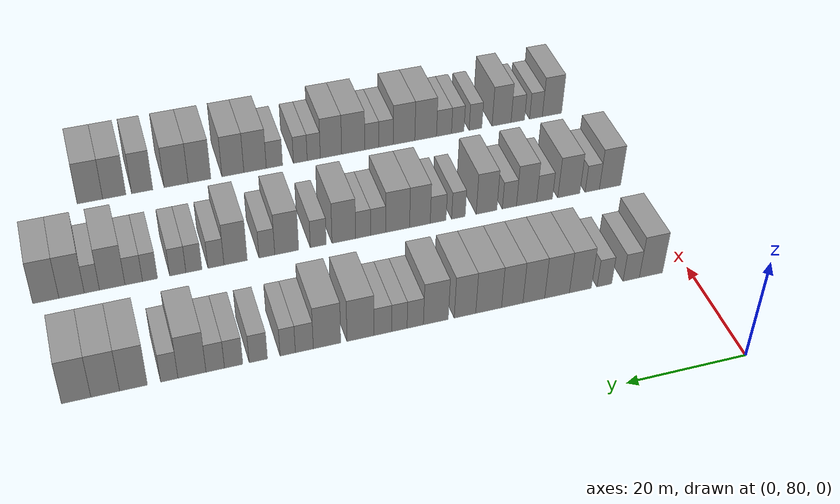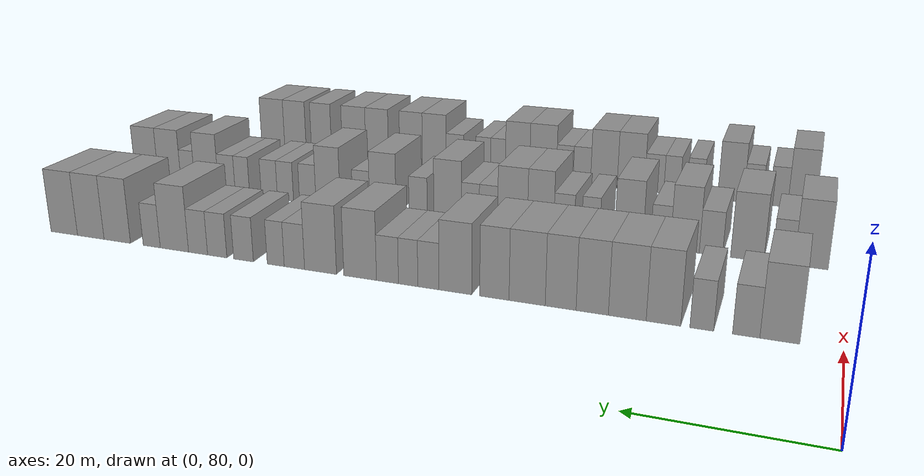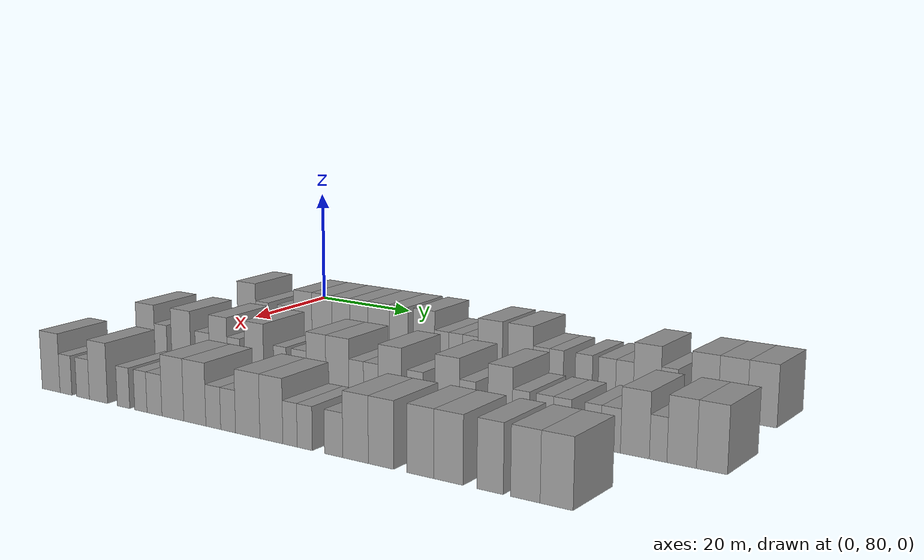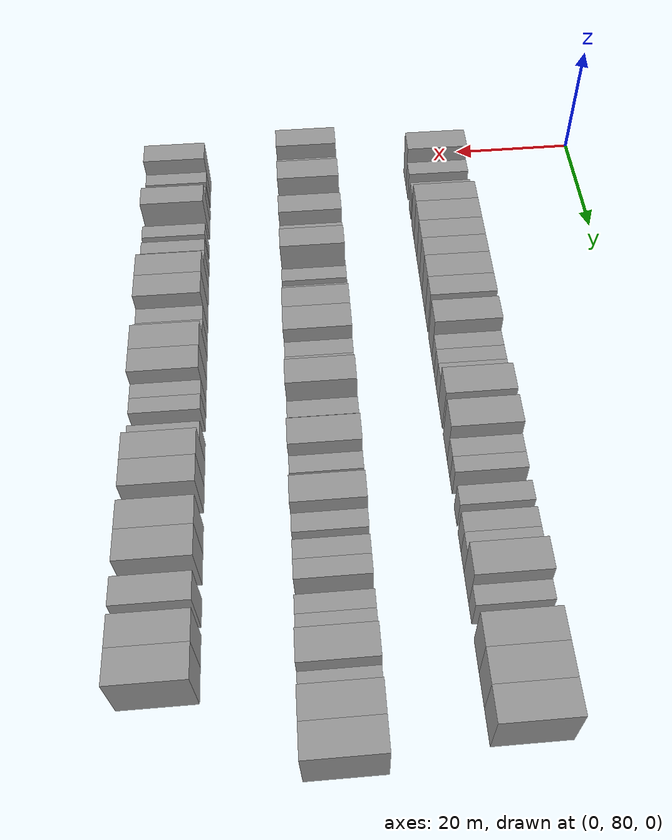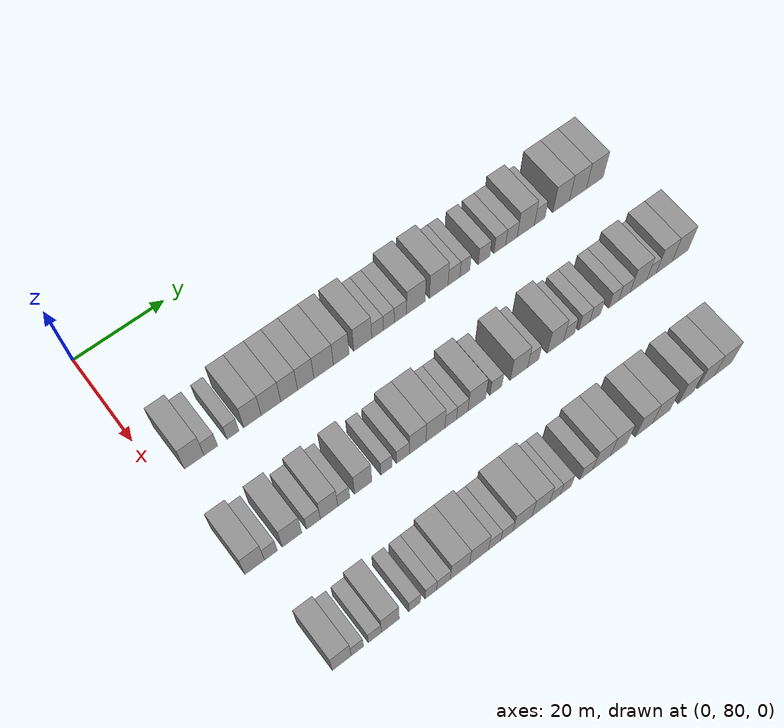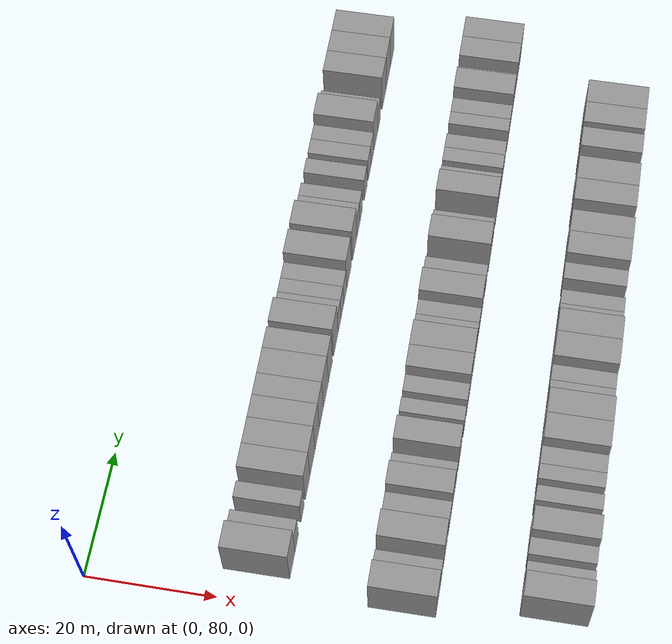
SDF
<sdf version="1.6">
 <world name="default">
  <model name="building_116">
   <static>1</static>
   <pose>25.0000 86.5409 0 0.000000 0.000000 0.000000</pose>
   <link name="link">
    <pose>0 0 4.50 0 0 0</pose>
    <collision name="collision"><geometry><box><size>10.0000 4.1463 9.0000</size></box></geometry></collision>
    <visual name="visual">
     <cast_shadows>0</cast_shadows>
     <geometry><box><size>10.0000 4.1463 9.0000</size></box></geometry>
     <material>
      <script>
       <uri>model://grey_wall/materials/scripts</uri>
       <uri>model://grey_wall/materials/textures</uri>
       <name>vrc/grey_wall</name>
      </script>
     </material>
    </visual>
   </link>
  </model>
  <model name="building_117">
   <static>1</static>
   <pose>25.0000 90.0628 0 0.000000 0.000000 0.000000</pose>
   <link name="link">
    <pose>0 0 3.00 0 0 0</pose>
    <collision name="collision"><geometry><box><size>10.0000 2.8974 6.0000</size></box></geometry></collision>
    <visual name="visual">
     <cast_shadows>0</cast_shadows>
     <geometry><box><size>10.0000 2.8974 6.0000</size></box></geometry>
     <material>
      <script>
       <uri>model://grey_wall/materials/scripts</uri>
       <uri>model://grey_wall/materials/textures</uri>
       <name>vrc/grey_wall</name>
      </script>
     </material>
    </visual>
   </link>
  </model>
  <model name="building_118">
   <static>1</static>
   <pose>25.0000 94.8070 0 0.000000 0.000000 0.000000</pose>
   <link name="link">
    <pose>0 0 3.00 0 0 0</pose>
    <collision name="collision"><geometry><box><size>10.0000 2.5909 6.0000</size></box></geometry></collision>
    <visual name="visual">
     <cast_shadows>0</cast_shadows>
     <geometry><box><size>10.0000 2.5909 6.0000</size></box></geometry>
     <material>
      <script>
       <uri>model://grey_wall/materials/scripts</uri>
       <uri>model://grey_wall/materials/textures</uri>
       <name>vrc/grey_wall</name>
      </script>
     </material>
    </visual>
   </link>
  </model>
  <model name="building_119">
   <static>1</static>
   <pose>25.0000 99.0191 0 0.000000 0.000000 0.000000</pose>
   <link name="link">
    <pose>0 0 4.50 0 0 0</pose>
    <collision name="collision"><geometry><box><size>10.0000 3.8332 9.0000</size></box></geometry></collision>
    <visual name="visual">
     <cast_shadows>0</cast_shadows>
     <geometry><box><size>10.0000 3.8332 9.0000</size></box></geometry>
     <material>
      <script>
       <uri>model://grey_wall/materials/scripts</uri>
       <uri>model://grey_wall/materials/textures</uri>
       <name>vrc/grey_wall</name>
      </script>
     </material>
    </visual>
   </link>
  </model>
  <model name="building_120">
   <static>1</static>
   <pose>25.0000 103.0786 0 0.000000 0.000000 0.000000</pose>
   <link name="link">
    <pose>0 0 4.50 0 0 0</pose>
    <collision name="collision"><geometry><box><size>10.0000 4.2858 9.0000</size></box></geometry></collision>
    <visual name="visual">
     <cast_shadows>0</cast_shadows>
     <geometry><box><size>10.0000 4.2858 9.0000</size></box></geometry>
     <material>
      <script>
       <uri>model://grey_wall/materials/scripts</uri>
       <uri>model://grey_wall/materials/textures</uri>
       <name>vrc/grey_wall</name>
      </script>
     </material>
    </visual>
   </link>
  </model>
  <model name="building_121">
   <static>1</static>
   <pose>25.0000 107.0925 0 0.000000 0.000000 0.000000</pose>
   <link name="link">
    <pose>0 0 4.50 0 0 0</pose>
    <collision name="collision"><geometry><box><size>10.0000 3.7421 9.0000</size></box></geometry></collision>
    <visual name="visual">
     <cast_shadows>0</cast_shadows>
     <geometry><box><size>10.0000 3.7421 9.0000</size></box></geometry>
     <material>
      <script>
       <uri>model://grey_wall/materials/scripts</uri>
       <uri>model://grey_wall/materials/textures</uri>
       <name>vrc/grey_wall</name>
      </script>
     </material>
    </visual>
   </link>
  </model>
  <model name="building_122">
   <static>1</static>
   <pose>25.0000 110.7872 0 0.000000 0.000000 0.000000</pose>
   <link name="link">
    <pose>0 0 4.50 0 0 0</pose>
    <collision name="collision"><geometry><box><size>10.0000 3.6472 9.0000</size></box></geometry></collision>
    <visual name="visual">
     <cast_shadows>0</cast_shadows>
     <geometry><box><size>10.0000 3.6472 9.0000</size></box></geometry>
     <material>
      <script>
       <uri>model://grey_wall/materials/scripts</uri>
       <uri>model://grey_wall/materials/textures</uri>
       <name>vrc/grey_wall</name>
      </script>
     </material>
    </visual>
   </link>
  </model>
  <model name="building_123">
   <static>1</static>
   <pose>25.0000 114.7940 0 0.000000 0.000000 0.000000</pose>
   <link name="link">
    <pose>0 0 4.50 0 0 0</pose>
    <collision name="collision"><geometry><box><size>10.0000 4.3665 9.0000</size></box></geometry></collision>
    <visual name="visual">
     <cast_shadows>0</cast_shadows>
     <geometry><box><size>10.0000 4.3665 9.0000</size></box></geometry>
     <material>
      <script>
       <uri>model://grey_wall/materials/scripts</uri>
       <uri>model://grey_wall/materials/textures</uri>
       <name>vrc/grey_wall</name>
      </script>
     </material>
    </visual>
   </link>
  </model>
  <model name="building_124">
   <static>1</static>
   <pose>25.0000 118.7830 0 0.000000 0.000000 0.000000</pose>
   <link name="link">
    <pose>0 0 4.50 0 0 0</pose>
    <collision name="collision"><geometry><box><size>10.0000 3.6114 9.0000</size></box></geometry></collision>
    <visual name="visual">
     <cast_shadows>0</cast_shadows>
     <geometry><box><size>10.0000 3.6114 9.0000</size></box></geometry>
     <material>
      <script>
       <uri>model://grey_wall/materials/scripts</uri>
       <uri>model://grey_wall/materials/textures</uri>
       <name>vrc/grey_wall</name>
      </script>
     </material>
    </visual>
   </link>
  </model>
  <model name="building_125">
   <static>1</static>
   <pose>25.0000 123.6581 0 0.000000 0.000000 0.000000</pose>
   <link name="link">
    <pose>0 0 4.50 0 0 0</pose>
    <collision name="collision"><geometry><box><size>10.0000 4.1387 9.0000</size></box></geometry></collision>
    <visual name="visual">
     <cast_shadows>0</cast_shadows>
     <geometry><box><size>10.0000 4.1387 9.0000</size></box></geometry>
     <material>
      <script>
       <uri>model://grey_wall/materials/scripts</uri>
       <uri>model://grey_wall/materials/textures</uri>
       <name>vrc/grey_wall</name>
      </script>
     </material>
    </visual>
   </link>
  </model>
  <model name="building_126">
   <static>1</static>
   <pose>25.0000 127.0789 0 0.000000 0.000000 0.000000</pose>
   <link name="link">
    <pose>0 0 3.00 0 0 0</pose>
    <collision name="collision"><geometry><box><size>10.0000 2.7028 6.0000</size></box></geometry></collision>
    <visual name="visual">
     <cast_shadows>0</cast_shadows>
     <geometry><box><size>10.0000 2.7028 6.0000</size></box></geometry>
     <material>
      <script>
       <uri>model://grey_wall/materials/scripts</uri>
       <uri>model://grey_wall/materials/textures</uri>
       <name>vrc/grey_wall</name>
      </script>
     </material>
    </visual>
   </link>
  </model>
  <model name="building_127">
   <static>1</static>
   <pose>25.0000 129.6932 0 0.000000 0.000000 0.000000</pose>
   <link name="link">
    <pose>0 0 3.00 0 0 0</pose>
    <collision name="collision"><geometry><box><size>10.0000 2.5258 6.0000</size></box></geometry></collision>
    <visual name="visual">
     <cast_shadows>0</cast_shadows>
     <geometry><box><size>10.0000 2.5258 6.0000</size></box></geometry>
     <material>
      <script>
       <uri>model://grey_wall/materials/scripts</uri>
       <uri>model://grey_wall/materials/textures</uri>
       <name>vrc/grey_wall</name>
      </script>
     </material>
    </visual>
   </link>
  </model>
  <model name="building_128">
   <static>1</static>
   <pose>25.0000 132.4040 0 0.000000 0.000000 0.000000</pose>
   <link name="link">
    <pose>0 0 3.00 0 0 0</pose>
    <collision name="collision"><geometry><box><size>10.0000 2.8959 6.0000</size></box></geometry></collision>
    <visual name="visual">
     <cast_shadows>0</cast_shadows>
     <geometry><box><size>10.0000 2.8959 6.0000</size></box></geometry>
     <material>
      <script>
       <uri>model://grey_wall/materials/scripts</uri>
       <uri>model://grey_wall/materials/textures</uri>
       <name>vrc/grey_wall</name>
      </script>
     </material>
    </visual>
   </link>
  </model>
  <model name="building_129">
   <static>1</static>
   <pose>25.0000 136.0474 0 0.000000 0.000000 0.000000</pose>
   <link name="link">
    <pose>0 0 4.50 0 0 0</pose>
    <collision name="collision"><geometry><box><size>10.0000 4.3910 9.0000</size></box></geometry></collision>
    <visual name="visual">
     <cast_shadows>0</cast_shadows>
     <geometry><box><size>10.0000 4.3910 9.0000</size></box></geometry>
     <material>
      <script>
       <uri>model://grey_wall/materials/scripts</uri>
       <uri>model://grey_wall/materials/textures</uri>
       <name>vrc/grey_wall</name>
      </script>
     </material>
    </visual>
   </link>
  </model>
  <model name="building_130">
   <static>1</static>
   <pose>25.0000 141.4439 0 0.000000 0.000000 0.000000</pose>
   <link name="link">
    <pose>0 0 4.50 0 0 0</pose>
    <collision name="collision"><geometry><box><size>10.0000 4.4021 9.0000</size></box></geometry></collision>
    <visual name="visual">
     <cast_shadows>0</cast_shadows>
     <geometry><box><size>10.0000 4.4021 9.0000</size></box></geometry>
     <material>
      <script>
       <uri>model://grey_wall/materials/scripts</uri>
       <uri>model://grey_wall/materials/textures</uri>
       <name>vrc/grey_wall</name>
      </script>
     </material>
    </visual>
   </link>
  </model>
  <model name="building_131">
   <static>1</static>
   <pose>25.0000 145.0742 0 0.000000 0.000000 0.000000</pose>
   <link name="link">
    <pose>0 0 3.00 0 0 0</pose>
    <collision name="collision"><geometry><box><size>10.0000 2.8584 6.0000</size></box></geometry></collision>
    <visual name="visual">
     <cast_shadows>0</cast_shadows>
     <geometry><box><size>10.0000 2.8584 6.0000</size></box></geometry>
     <material>
      <script>
       <uri>model://grey_wall/materials/scripts</uri>
       <uri>model://grey_wall/materials/textures</uri>
       <name>vrc/grey_wall</name>
      </script>
     </material>
    </visual>
   </link>
  </model>
  <model name="building_132">
   <static>1</static>
   <pose>25.0000 147.7127 0 0.000000 0.000000 0.000000</pose>
   <link name="link">
    <pose>0 0 3.00 0 0 0</pose>
    <collision name="collision"><geometry><box><size>10.0000 2.4186 6.0000</size></box></geometry></collision>
    <visual name="visual">
     <cast_shadows>0</cast_shadows>
     <geometry><box><size>10.0000 2.4186 6.0000</size></box></geometry>
     <material>
      <script>
       <uri>model://grey_wall/materials/scripts</uri>
       <uri>model://grey_wall/materials/textures</uri>
       <name>vrc/grey_wall</name>
      </script>
     </material>
    </visual>
   </link>
  </model>
  <model name="building_133">
   <static>1</static>
   <pose>25.0000 152.3538 0 0.000000 0.000000 0.000000</pose>
   <link name="link">
    <pose>0 0 3.00 0 0 0</pose>
    <collision name="collision"><geometry><box><size>10.0000 2.8638 6.0000</size></box></geometry></collision>
    <visual name="visual">
     <cast_shadows>0</cast_shadows>
     <geometry><box><size>10.0000 2.8638 6.0000</size></box></geometry>
     <material>
      <script>
       <uri>model://grey_wall/materials/scripts</uri>
       <uri>model://grey_wall/materials/textures</uri>
       <name>vrc/grey_wall</name>
      </script>
     </material>
    </visual>
   </link>
  </model>
  <model name="building_134">
   <static>1</static>
   <pose>25.0000 156.2136 0 0.000000 0.000000 0.000000</pose>
   <link name="link">
    <pose>0 0 3.00 0 0 0</pose>
    <collision name="collision"><geometry><box><size>10.0000 2.8557 6.0000</size></box></geometry></collision>
    <visual name="visual">
     <cast_shadows>0</cast_shadows>
     <geometry><box><size>10.0000 2.8557 6.0000</size></box></geometry>
     <material>
      <script>
       <uri>model://grey_wall/materials/scripts</uri>
       <uri>model://grey_wall/materials/textures</uri>
       <name>vrc/grey_wall</name>
      </script>
     </material>
    </visual>
   </link>
  </model>
  <model name="building_135">
   <static>1</static>
   <pose>25.0000 159.0727 0 0.000000 0.000000 0.000000</pose>
   <link name="link">
    <pose>0 0 3.00 0 0 0</pose>
    <collision name="collision"><geometry><box><size>10.0000 2.8624 6.0000</size></box></geometry></collision>
    <visual name="visual">
     <cast_shadows>0</cast_shadows>
     <geometry><box><size>10.0000 2.8624 6.0000</size></box></geometry>
     <material>
      <script>
       <uri>model://grey_wall/materials/scripts</uri>
       <uri>model://grey_wall/materials/textures</uri>
       <name>vrc/grey_wall</name>
      </script>
     </material>
    </visual>
   </link>
  </model>
  <model name="building_136">
   <static>1</static>
   <pose>25.0000 162.6638 0 0.000000 0.000000 0.000000</pose>
   <link name="link">
    <pose>0 0 4.50 0 0 0</pose>
    <collision name="collision"><geometry><box><size>10.0000 4.3197 9.0000</size></box></geometry></collision>
    <visual name="visual">
     <cast_shadows>0</cast_shadows>
     <geometry><box><size>10.0000 4.3197 9.0000</size></box></geometry>
     <material>
      <script>
       <uri>model://grey_wall/materials/scripts</uri>
       <uri>model://grey_wall/materials/textures</uri>
       <name>vrc/grey_wall</name>
      </script>
     </material>
    </visual>
   </link>
  </model>
  <model name="building_137">
   <static>1</static>
   <pose>25.0000 166.1462 0 0.000000 0.000000 0.000000</pose>
   <link name="link">
    <pose>0 0 3.00 0 0 0</pose>
    <collision name="collision"><geometry><box><size>10.0000 2.6452 6.0000</size></box></geometry></collision>
    <visual name="visual">
     <cast_shadows>0</cast_shadows>
     <geometry><box><size>10.0000 2.6452 6.0000</size></box></geometry>
     <material>
      <script>
       <uri>model://grey_wall/materials/scripts</uri>
       <uri>model://grey_wall/materials/textures</uri>
       <name>vrc/grey_wall</name>
      </script>
     </material>
    </visual>
   </link>
  </model>
  <model name="building_138">
   <static>1</static>
   <pose>25.0000 171.5679 0 0.000000 0.000000 0.000000</pose>
   <link name="link">
    <pose>0 0 4.50 0 0 0</pose>
    <collision name="collision"><geometry><box><size>10.0000 4.1981 9.0000</size></box></geometry></collision>
    <visual name="visual">
     <cast_shadows>0</cast_shadows>
     <geometry><box><size>10.0000 4.1981 9.0000</size></box></geometry>
     <material>
      <script>
       <uri>model://grey_wall/materials/scripts</uri>
       <uri>model://grey_wall/materials/textures</uri>
       <name>vrc/grey_wall</name>
      </script>
     </material>
    </visual>
   </link>
  </model>
  <model name="building_139">
   <static>1</static>
   <pose>25.0000 175.8193 0 0.000000 0.000000 0.000000</pose>
   <link name="link">
    <pose>0 0 4.50 0 0 0</pose>
    <collision name="collision"><geometry><box><size>10.0000 4.3047 9.0000</size></box></geometry></collision>
    <visual name="visual">
     <cast_shadows>0</cast_shadows>
     <geometry><box><size>10.0000 4.3047 9.0000</size></box></geometry>
     <material>
      <script>
       <uri>model://grey_wall/materials/scripts</uri>
       <uri>model://grey_wall/materials/textures</uri>
       <name>vrc/grey_wall</name>
      </script>
     </material>
    </visual>
   </link>
  </model>
  <model name="building_140">
   <static>1</static>
   <pose>25.0000 180.1568 0 0.000000 0.000000 0.000000</pose>
   <link name="link">
    <pose>0 0 4.50 0 0 0</pose>
    <collision name="collision"><geometry><box><size>10.0000 4.3703 9.0000</size></box></geometry></collision>
    <visual name="visual">
     <cast_shadows>0</cast_shadows>
     <geometry><box><size>10.0000 4.3703 9.0000</size></box></geometry>
     <material>
      <script>
       <uri>model://grey_wall/materials/scripts</uri>
       <uri>model://grey_wall/materials/textures</uri>
       <name>vrc/grey_wall</name>
      </script>
     </material>
    </visual>
   </link>
  </model>
  <model name="building_309">
   <static>1</static>
   <pose>47.0000 84.0819 0 0.000000 0.000000 0.000000</pose>
   <link name="link">
    <pose>0 0 4.50 0 0 0</pose>
    <collision name="collision"><geometry><box><size>10.0000 4.0650 9.0000</size></box></geometry></collision>
    <visual name="visual">
     <cast_shadows>0</cast_shadows>
     <geometry><box><size>10.0000 4.0650 9.0000</size></box></geometry>
     <material>
      <script>
       <uri>model://grey_wall/materials/scripts</uri>
       <uri>model://grey_wall/materials/textures</uri>
       <name>vrc/grey_wall</name>
      </script>
     </material>
    </visual>
   </link>
  </model>
  <model name="building_310">
   <static>1</static>
   <pose>47.0000 87.4662 0 0.000000 0.000000 0.000000</pose>
   <link name="link">
    <pose>0 0 3.00 0 0 0</pose>
    <collision name="collision"><geometry><box><size>10.0000 2.7037 6.0000</size></box></geometry></collision>
    <visual name="visual">
     <cast_shadows>0</cast_shadows>
     <geometry><box><size>10.0000 2.7037 6.0000</size></box></geometry>
     <material>
      <script>
       <uri>model://grey_wall/materials/scripts</uri>
       <uri>model://grey_wall/materials/textures</uri>
       <name>vrc/grey_wall</name>
      </script>
     </material>
    </visual>
   </link>
  </model>
  <model name="building_311">
   <static>1</static>
   <pose>47.0000 91.8913 0 0.000000 0.000000 0.000000</pose>
   <link name="link">
    <pose>0 0 4.50 0 0 0</pose>
    <collision name="collision"><geometry><box><size>10.0000 4.1465 9.0000</size></box></geometry></collision>
    <visual name="visual">
     <cast_shadows>0</cast_shadows>
     <geometry><box><size>10.0000 4.1465 9.0000</size></box></geometry>
     <material>
      <script>
       <uri>model://grey_wall/materials/scripts</uri>
       <uri>model://grey_wall/materials/textures</uri>
       <name>vrc/grey_wall</name>
      </script>
     </material>
    </visual>
   </link>
  </model>
  <model name="building_312">
   <static>1</static>
   <pose>47.0000 96.4433 0 0.000000 0.000000 0.000000</pose>
   <link name="link">
    <pose>0 0 3.00 0 0 0</pose>
    <collision name="collision"><geometry><box><size>10.0000 2.9574 6.0000</size></box></geometry></collision>
    <visual name="visual">
     <cast_shadows>0</cast_shadows>
     <geometry><box><size>10.0000 2.9574 6.0000</size></box></geometry>
     <material>
      <script>
       <uri>model://grey_wall/materials/scripts</uri>
       <uri>model://grey_wall/materials/textures</uri>
       <name>vrc/grey_wall</name>
      </script>
     </material>
    </visual>
   </link>
  </model>
  <model name="building_313">
   <static>1</static>
   <pose>47.0000 99.7922 0 0.000000 0.000000 0.000000</pose>
   <link name="link">
    <pose>0 0 4.50 0 0 0</pose>
    <collision name="collision"><geometry><box><size>10.0000 3.7405 9.0000</size></box></geometry></collision>
    <visual name="visual">
     <cast_shadows>0</cast_shadows>
     <geometry><box><size>10.0000 3.7405 9.0000</size></box></geometry>
     <material>
      <script>
       <uri>model://grey_wall/materials/scripts</uri>
       <uri>model://grey_wall/materials/textures</uri>
       <name>vrc/grey_wall</name>
      </script>
     </material>
    </visual>
   </link>
  </model>
  <model name="building_314">
   <static>1</static>
   <pose>47.0000 102.9654 0 0.000000 0.000000 0.000000</pose>
   <link name="link">
    <pose>0 0 3.00 0 0 0</pose>
    <collision name="collision"><geometry><box><size>10.0000 2.6058 6.0000</size></box></geometry></collision>
    <visual name="visual">
     <cast_shadows>0</cast_shadows>
     <geometry><box><size>10.0000 2.6058 6.0000</size></box></geometry>
     <material>
      <script>
       <uri>model://grey_wall/materials/scripts</uri>
       <uri>model://grey_wall/materials/textures</uri>
       <name>vrc/grey_wall</name>
      </script>
     </material>
    </visual>
   </link>
  </model>
  <model name="building_315">
   <static>1</static>
   <pose>47.0000 107.1641 0 0.000000 0.000000 0.000000</pose>
   <link name="link">
    <pose>0 0 4.50 0 0 0</pose>
    <collision name="collision"><geometry><box><size>10.0000 3.7917 9.0000</size></box></geometry></collision>
    <visual name="visual">
     <cast_shadows>0</cast_shadows>
     <geometry><box><size>10.0000 3.7917 9.0000</size></box></geometry>
     <material>
      <script>
       <uri>model://grey_wall/materials/scripts</uri>
       <uri>model://grey_wall/materials/textures</uri>
       <name>vrc/grey_wall</name>
      </script>
     </material>
    </visual>
   </link>
  </model>
  <model name="building_316">
   <static>1</static>
   <pose>47.0000 112.2945 0 0.000000 0.000000 0.000000</pose>
   <link name="link">
    <pose>0 0 3.00 0 0 0</pose>
    <collision name="collision"><geometry><box><size>10.0000 2.4691 6.0000</size></box></geometry></collision>
    <visual name="visual">
     <cast_shadows>0</cast_shadows>
     <geometry><box><size>10.0000 2.4691 6.0000</size></box></geometry>
     <material>
      <script>
       <uri>model://grey_wall/materials/scripts</uri>
       <uri>model://grey_wall/materials/textures</uri>
       <name>vrc/grey_wall</name>
      </script>
     </material>
    </visual>
   </link>
  </model>
  <model name="building_317">
   <static>1</static>
   <pose>47.0000 115.9572 0 0.000000 0.000000 0.000000</pose>
   <link name="link">
    <pose>0 0 3.00 0 0 0</pose>
    <collision name="collision"><geometry><box><size>10.0000 2.8562 6.0000</size></box></geometry></collision>
    <visual name="visual">
     <cast_shadows>0</cast_shadows>
     <geometry><box><size>10.0000 2.8562 6.0000</size></box></geometry>
     <material>
      <script>
       <uri>model://grey_wall/materials/scripts</uri>
       <uri>model://grey_wall/materials/textures</uri>
       <name>vrc/grey_wall</name>
      </script>
     </material>
    </visual>
   </link>
  </model>
  <model name="building_318">
   <static>1</static>
   <pose>47.0000 119.2346 0 0.000000 0.000000 0.000000</pose>
   <link name="link">
    <pose>0 0 4.50 0 0 0</pose>
    <collision name="collision"><geometry><box><size>10.0000 3.6986 9.0000</size></box></geometry></collision>
    <visual name="visual">
     <cast_shadows>0</cast_shadows>
     <geometry><box><size>10.0000 3.6986 9.0000</size></box></geometry>
     <material>
      <script>
       <uri>model://grey_wall/materials/scripts</uri>
       <uri>model://grey_wall/materials/textures</uri>
       <name>vrc/grey_wall</name>
      </script>
     </material>
    </visual>
   </link>
  </model>
  <model name="building_319">
   <static>1</static>
   <pose>47.0000 123.2150 0 0.000000 0.000000 0.000000</pose>
   <link name="link">
    <pose>0 0 4.50 0 0 0</pose>
    <collision name="collision"><geometry><box><size>10.0000 4.2623 9.0000</size></box></geometry></collision>
    <visual name="visual">
     <cast_shadows>0</cast_shadows>
     <geometry><box><size>10.0000 4.2623 9.0000</size></box></geometry>
     <material>
      <script>
       <uri>model://grey_wall/materials/scripts</uri>
       <uri>model://grey_wall/materials/textures</uri>
       <name>vrc/grey_wall</name>
      </script>
     </material>
    </visual>
   </link>
  </model>
  <model name="building_320">
   <static>1</static>
   <pose>47.0000 126.6829 0 0.000000 0.000000 0.000000</pose>
   <link name="link">
    <pose>0 0 3.00 0 0 0</pose>
    <collision name="collision"><geometry><box><size>10.0000 2.6734 6.0000</size></box></geometry></collision>
    <visual name="visual">
     <cast_shadows>0</cast_shadows>
     <geometry><box><size>10.0000 2.6734 6.0000</size></box></geometry>
     <material>
      <script>
       <uri>model://grey_wall/materials/scripts</uri>
       <uri>model://grey_wall/materials/textures</uri>
       <name>vrc/grey_wall</name>
      </script>
     </material>
    </visual>
   </link>
  </model>
  <model name="building_321">
   <static>1</static>
   <pose>47.0000 129.3252 0 0.000000 0.000000 0.000000</pose>
   <link name="link">
    <pose>0 0 3.00 0 0 0</pose>
    <collision name="collision"><geometry><box><size>10.0000 2.6112 6.0000</size></box></geometry></collision>
    <visual name="visual">
     <cast_shadows>0</cast_shadows>
     <geometry><box><size>10.0000 2.6112 6.0000</size></box></geometry>
     <material>
      <script>
       <uri>model://grey_wall/materials/scripts</uri>
       <uri>model://grey_wall/materials/textures</uri>
       <name>vrc/grey_wall</name>
      </script>
     </material>
    </visual>
   </link>
  </model>
  <model name="building_322">
   <static>1</static>
   <pose>47.0000 132.6867 0 0.000000 0.000000 0.000000</pose>
   <link name="link">
    <pose>0 0 4.50 0 0 0</pose>
    <collision name="collision"><geometry><box><size>10.0000 4.1118 9.0000</size></box></geometry></collision>
    <visual name="visual">
     <cast_shadows>0</cast_shadows>
     <geometry><box><size>10.0000 4.1118 9.0000</size></box></geometry>
     <material>
      <script>
       <uri>model://grey_wall/materials/scripts</uri>
       <uri>model://grey_wall/materials/textures</uri>
       <name>vrc/grey_wall</name>
      </script>
     </material>
    </visual>
   </link>
  </model>
  <model name="building_323">
   <static>1</static>
   <pose>47.0000 137.1242 0 0.000000 0.000000 0.000000</pose>
   <link name="link">
    <pose>0 0 3.00 0 0 0</pose>
    <collision name="collision"><geometry><box><size>10.0000 2.7633 6.0000</size></box></geometry></collision>
    <visual name="visual">
     <cast_shadows>0</cast_shadows>
     <geometry><box><size>10.0000 2.7633 6.0000</size></box></geometry>
     <material>
      <script>
       <uri>model://grey_wall/materials/scripts</uri>
       <uri>model://grey_wall/materials/textures</uri>
       <name>vrc/grey_wall</name>
      </script>
     </material>
    </visual>
   </link>
  </model>
  <model name="building_324">
   <static>1</static>
   <pose>47.0000 142.5549 0 0.000000 0.000000 0.000000</pose>
   <link name="link">
    <pose>0 0 4.50 0 0 0</pose>
    <collision name="collision"><geometry><box><size>10.0000 4.0981 9.0000</size></box></geometry></collision>
    <visual name="visual">
     <cast_shadows>0</cast_shadows>
     <geometry><box><size>10.0000 4.0981 9.0000</size></box></geometry>
     <material>
      <script>
       <uri>model://grey_wall/materials/scripts</uri>
       <uri>model://grey_wall/materials/textures</uri>
       <name>vrc/grey_wall</name>
      </script>
     </material>
    </visual>
   </link>
  </model>
  <model name="building_325">
   <static>1</static>
   <pose>47.0000 145.9447 0 0.000000 0.000000 0.000000</pose>
   <link name="link">
    <pose>0 0 3.00 0 0 0</pose>
    <collision name="collision"><geometry><box><size>10.0000 2.6815 6.0000</size></box></geometry></collision>
    <visual name="visual">
     <cast_shadows>0</cast_shadows>
     <geometry><box><size>10.0000 2.6815 6.0000</size></box></geometry>
     <material>
      <script>
       <uri>model://grey_wall/materials/scripts</uri>
       <uri>model://grey_wall/materials/textures</uri>
       <name>vrc/grey_wall</name>
      </script>
     </material>
    </visual>
   </link>
  </model>
  <model name="building_326">
   <static>1</static>
   <pose>47.0000 151.2444 0 0.000000 0.000000 0.000000</pose>
   <link name="link">
    <pose>0 0 4.50 0 0 0</pose>
    <collision name="collision"><geometry><box><size>10.0000 3.9180 9.0000</size></box></geometry></collision>
    <visual name="visual">
     <cast_shadows>0</cast_shadows>
     <geometry><box><size>10.0000 3.9180 9.0000</size></box></geometry>
     <material>
      <script>
       <uri>model://grey_wall/materials/scripts</uri>
       <uri>model://grey_wall/materials/textures</uri>
       <name>vrc/grey_wall</name>
      </script>
     </material>
    </visual>
   </link>
  </model>
  <model name="building_327">
   <static>1</static>
   <pose>47.0000 154.5474 0 0.000000 0.000000 0.000000</pose>
   <link name="link">
    <pose>0 0 3.00 0 0 0</pose>
    <collision name="collision"><geometry><box><size>10.0000 2.6881 6.0000</size></box></geometry></collision>
    <visual name="visual">
     <cast_shadows>0</cast_shadows>
     <geometry><box><size>10.0000 2.6881 6.0000</size></box></geometry>
     <material>
      <script>
       <uri>model://grey_wall/materials/scripts</uri>
       <uri>model://grey_wall/materials/textures</uri>
       <name>vrc/grey_wall</name>
      </script>
     </material>
    </visual>
   </link>
  </model>
  <model name="building_328">
   <static>1</static>
   <pose>47.0000 158.2276 0 0.000000 0.000000 0.000000</pose>
   <link name="link">
    <pose>0 0 3.00 0 0 0</pose>
    <collision name="collision"><geometry><box><size>10.0000 2.6722 6.0000</size></box></geometry></collision>
    <visual name="visual">
     <cast_shadows>0</cast_shadows>
     <geometry><box><size>10.0000 2.6722 6.0000</size></box></geometry>
     <material>
      <script>
       <uri>model://grey_wall/materials/scripts</uri>
       <uri>model://grey_wall/materials/textures</uri>
       <name>vrc/grey_wall</name>
      </script>
     </material>
    </visual>
   </link>
  </model>
  <model name="building_329">
   <static>1</static>
   <pose>47.0000 160.9131 0 0.000000 0.000000 0.000000</pose>
   <link name="link">
    <pose>0 0 3.00 0 0 0</pose>
    <collision name="collision"><geometry><box><size>10.0000 2.6987 6.0000</size></box></geometry></collision>
    <visual name="visual">
     <cast_shadows>0</cast_shadows>
     <geometry><box><size>10.0000 2.6987 6.0000</size></box></geometry>
     <material>
      <script>
       <uri>model://grey_wall/materials/scripts</uri>
       <uri>model://grey_wall/materials/textures</uri>
       <name>vrc/grey_wall</name>
      </script>
     </material>
    </visual>
   </link>
  </model>
  <model name="building_330">
   <static>1</static>
   <pose>47.0000 165.4942 0 0.000000 0.000000 0.000000</pose>
   <link name="link">
    <pose>0 0 3.00 0 0 0</pose>
    <collision name="collision"><geometry><box><size>10.0000 2.4636 6.0000</size></box></geometry></collision>
    <visual name="visual">
     <cast_shadows>0</cast_shadows>
     <geometry><box><size>10.0000 2.4636 6.0000</size></box></geometry>
     <material>
      <script>
       <uri>model://grey_wall/materials/scripts</uri>
       <uri>model://grey_wall/materials/textures</uri>
       <name>vrc/grey_wall</name>
      </script>
     </material>
    </visual>
   </link>
  </model>
  <model name="building_331">
   <static>1</static>
   <pose>47.0000 168.1573 0 0.000000 0.000000 0.000000</pose>
   <link name="link">
    <pose>0 0 3.00 0 0 0</pose>
    <collision name="collision"><geometry><box><size>10.0000 2.8625 6.0000</size></box></geometry></collision>
    <visual name="visual">
     <cast_shadows>0</cast_shadows>
     <geometry><box><size>10.0000 2.8625 6.0000</size></box></geometry>
     <material>
      <script>
       <uri>model://grey_wall/materials/scripts</uri>
       <uri>model://grey_wall/materials/textures</uri>
       <name>vrc/grey_wall</name>
      </script>
     </material>
    </visual>
   </link>
  </model>
  <model name="building_332">
   <static>1</static>
   <pose>47.0000 171.6560 0 0.000000 0.000000 0.000000</pose>
   <link name="link">
    <pose>0 0 4.50 0 0 0</pose>
    <collision name="collision"><geometry><box><size>10.0000 4.1349 9.0000</size></box></geometry></collision>
    <visual name="visual">
     <cast_shadows>0</cast_shadows>
     <geometry><box><size>10.0000 4.1349 9.0000</size></box></geometry>
     <material>
      <script>
       <uri>model://grey_wall/materials/scripts</uri>
       <uri>model://grey_wall/materials/textures</uri>
       <name>vrc/grey_wall</name>
      </script>
     </material>
    </visual>
   </link>
  </model>
  <model name="building_333">
   <static>1</static>
   <pose>47.0000 174.9479 0 0.000000 0.000000 0.000000</pose>
   <link name="link">
    <pose>0 0 3.00 0 0 0</pose>
    <collision name="collision"><geometry><box><size>10.0000 2.4487 6.0000</size></box></geometry></collision>
    <visual name="visual">
     <cast_shadows>0</cast_shadows>
     <geometry><box><size>10.0000 2.4487 6.0000</size></box></geometry>
     <material>
      <script>
       <uri>model://grey_wall/materials/scripts</uri>
       <uri>model://grey_wall/materials/textures</uri>
       <name>vrc/grey_wall</name>
      </script>
     </material>
    </visual>
   </link>
  </model>
  <model name="building_334">
   <static>1</static>
   <pose>47.0000 178.2045 0 0.000000 0.000000 0.000000</pose>
   <link name="link">
    <pose>0 0 4.50 0 0 0</pose>
    <collision name="collision"><geometry><box><size>10.0000 4.0645 9.0000</size></box></geometry></collision>
    <visual name="visual">
     <cast_shadows>0</cast_shadows>
     <geometry><box><size>10.0000 4.0645 9.0000</size></box></geometry>
     <material>
      <script>
       <uri>model://grey_wall/materials/scripts</uri>
       <uri>model://grey_wall/materials/textures</uri>
       <name>vrc/grey_wall</name>
      </script>
     </material>
    </visual>
   </link>
  </model>
  <model name="building_335">
   <static>1</static>
   <pose>47.0000 182.3185 0 0.000000 0.000000 0.000000</pose>
   <link name="link">
    <pose>0 0 4.50 0 0 0</pose>
    <collision name="collision"><geometry><box><size>10.0000 4.1635 9.0000</size></box></geometry></collision>
    <visual name="visual">
     <cast_shadows>0</cast_shadows>
     <geometry><box><size>10.0000 4.1635 9.0000</size></box></geometry>
     <material>
      <script>
       <uri>model://grey_wall/materials/scripts</uri>
       <uri>model://grey_wall/materials/textures</uri>
       <name>vrc/grey_wall</name>
      </script>
     </material>
    </visual>
   </link>
  </model>
  <model name="building_493">
   <static>1</static>
   <pose>69.0000 86.1572 0 0.000000 0.000000 0.000000</pose>
   <link name="link">
    <pose>0 0 4.50 0 0 0</pose>
    <collision name="collision"><geometry><box><size>10.0000 3.8791 9.0000</size></box></geometry></collision>
    <visual name="visual">
     <cast_shadows>0</cast_shadows>
     <geometry><box><size>10.0000 3.8791 9.0000</size></box></geometry>
     <material>
      <script>
       <uri>model://grey_wall/materials/scripts</uri>
       <uri>model://grey_wall/materials/textures</uri>
       <name>vrc/grey_wall</name>
      </script>
     </material>
    </visual>
   </link>
  </model>
  <model name="building_494">
   <static>1</static>
   <pose>69.0000 89.3719 0 0.000000 0.000000 0.000000</pose>
   <link name="link">
    <pose>0 0 3.00 0 0 0</pose>
    <collision name="collision"><geometry><box><size>10.0000 2.5503 6.0000</size></box></geometry></collision>
    <visual name="visual">
     <cast_shadows>0</cast_shadows>
     <geometry><box><size>10.0000 2.5503 6.0000</size></box></geometry>
     <material>
      <script>
       <uri>model://grey_wall/materials/scripts</uri>
       <uri>model://grey_wall/materials/textures</uri>
       <name>vrc/grey_wall</name>
      </script>
     </material>
    </visual>
   </link>
  </model>
  <model name="building_495">
   <static>1</static>
   <pose>69.0000 92.9912 0 0.000000 0.000000 0.000000</pose>
   <link name="link">
    <pose>0 0 3.00 0 0 0</pose>
    <collision name="collision"><geometry><box><size>10.0000 2.6883 6.0000</size></box></geometry></collision>
    <visual name="visual">
     <cast_shadows>0</cast_shadows>
     <geometry><box><size>10.0000 2.6883 6.0000</size></box></geometry>
     <material>
      <script>
       <uri>model://grey_wall/materials/scripts</uri>
       <uri>model://grey_wall/materials/textures</uri>
       <name>vrc/grey_wall</name>
      </script>
     </material>
    </visual>
   </link>
  </model>
  <model name="building_496">
   <static>1</static>
   <pose>69.0000 96.2151 0 0.000000 0.000000 0.000000</pose>
   <link name="link">
    <pose>0 0 4.50 0 0 0</pose>
    <collision name="collision"><geometry><box><size>10.0000 3.7594 9.0000</size></box></geometry></collision>
    <visual name="visual">
     <cast_shadows>0</cast_shadows>
     <geometry><box><size>10.0000 3.7594 9.0000</size></box></geometry>
     <material>
      <script>
       <uri>model://grey_wall/materials/scripts</uri>
       <uri>model://grey_wall/materials/textures</uri>
       <name>vrc/grey_wall</name>
      </script>
     </material>
    </visual>
   </link>
  </model>
  <model name="building_497">
   <static>1</static>
   <pose>69.0000 101.3490 0 0.000000 0.000000 0.000000</pose>
   <link name="link">
    <pose>0 0 3.00 0 0 0</pose>
    <collision name="collision"><geometry><box><size>10.0000 2.5084 6.0000</size></box></geometry></collision>
    <visual name="visual">
     <cast_shadows>0</cast_shadows>
     <geometry><box><size>10.0000 2.5084 6.0000</size></box></geometry>
     <material>
      <script>
       <uri>model://grey_wall/materials/scripts</uri>
       <uri>model://grey_wall/materials/textures</uri>
       <name>vrc/grey_wall</name>
      </script>
     </material>
    </visual>
   </link>
  </model>
  <model name="building_498">
   <static>1</static>
   <pose>69.0000 104.8216 0 0.000000 0.000000 0.000000</pose>
   <link name="link">
    <pose>0 0 3.00 0 0 0</pose>
    <collision name="collision"><geometry><box><size>10.0000 2.4367 6.0000</size></box></geometry></collision>
    <visual name="visual">
     <cast_shadows>0</cast_shadows>
     <geometry><box><size>10.0000 2.4367 6.0000</size></box></geometry>
     <material>
      <script>
       <uri>model://grey_wall/materials/scripts</uri>
       <uri>model://grey_wall/materials/textures</uri>
       <name>vrc/grey_wall</name>
      </script>
     </material>
    </visual>
   </link>
  </model>
  <model name="building_499">
   <static>1</static>
   <pose>69.0000 107.4997 0 0.000000 0.000000 0.000000</pose>
   <link name="link">
    <pose>0 0 3.00 0 0 0</pose>
    <collision name="collision"><geometry><box><size>10.0000 2.9196 6.0000</size></box></geometry></collision>
    <visual name="visual">
     <cast_shadows>0</cast_shadows>
     <geometry><box><size>10.0000 2.9196 6.0000</size></box></geometry>
     <material>
      <script>
       <uri>model://grey_wall/materials/scripts</uri>
       <uri>model://grey_wall/materials/textures</uri>
       <name>vrc/grey_wall</name>
      </script>
     </material>
    </visual>
   </link>
  </model>
  <model name="building_500">
   <static>1</static>
   <pose>69.0000 111.0514 0 0.000000 0.000000 0.000000</pose>
   <link name="link">
    <pose>0 0 4.50 0 0 0</pose>
    <collision name="collision"><geometry><box><size>10.0000 4.1837 9.0000</size></box></geometry></collision>
    <visual name="visual">
     <cast_shadows>0</cast_shadows>
     <geometry><box><size>10.0000 4.1837 9.0000</size></box></geometry>
     <material>
      <script>
       <uri>model://grey_wall/materials/scripts</uri>
       <uri>model://grey_wall/materials/textures</uri>
       <name>vrc/grey_wall</name>
      </script>
     </material>
    </visual>
   </link>
  </model>
  <model name="building_501">
   <static>1</static>
   <pose>69.0000 115.2149 0 0.000000 0.000000 0.000000</pose>
   <link name="link">
    <pose>0 0 4.50 0 0 0</pose>
    <collision name="collision"><geometry><box><size>10.0000 4.1434 9.0000</size></box></geometry></collision>
    <visual name="visual">
     <cast_shadows>0</cast_shadows>
     <geometry><box><size>10.0000 4.1434 9.0000</size></box></geometry>
     <material>
      <script>
       <uri>model://grey_wall/materials/scripts</uri>
       <uri>model://grey_wall/materials/textures</uri>
       <name>vrc/grey_wall</name>
      </script>
     </material>
    </visual>
   </link>
  </model>
  <model name="building_502">
   <static>1</static>
   <pose>69.0000 118.6529 0 0.000000 0.000000 0.000000</pose>
   <link name="link">
    <pose>0 0 3.00 0 0 0</pose>
    <collision name="collision"><geometry><box><size>10.0000 2.7328 6.0000</size></box></geometry></collision>
    <visual name="visual">
     <cast_shadows>0</cast_shadows>
     <geometry><box><size>10.0000 2.7328 6.0000</size></box></geometry>
     <material>
      <script>
       <uri>model://grey_wall/materials/scripts</uri>
       <uri>model://grey_wall/materials/textures</uri>
       <name>vrc/grey_wall</name>
      </script>
     </material>
    </visual>
   </link>
  </model>
  <model name="building_503">
   <static>1</static>
   <pose>69.0000 121.3659 0 0.000000 0.000000 0.000000</pose>
   <link name="link">
    <pose>0 0 3.00 0 0 0</pose>
    <collision name="collision"><geometry><box><size>10.0000 2.6931 6.0000</size></box></geometry></collision>
    <visual name="visual">
     <cast_shadows>0</cast_shadows>
     <geometry><box><size>10.0000 2.6931 6.0000</size></box></geometry>
     <material>
      <script>
       <uri>model://grey_wall/materials/scripts</uri>
       <uri>model://grey_wall/materials/textures</uri>
       <name>vrc/grey_wall</name>
      </script>
     </material>
    </visual>
   </link>
  </model>
  <model name="building_504">
   <static>1</static>
   <pose>69.0000 124.8737 0 0.000000 0.000000 0.000000</pose>
   <link name="link">
    <pose>0 0 4.50 0 0 0</pose>
    <collision name="collision"><geometry><box><size>10.0000 4.3226 9.0000</size></box></geometry></collision>
    <visual name="visual">
     <cast_shadows>0</cast_shadows>
     <geometry><box><size>10.0000 4.3226 9.0000</size></box></geometry>
     <material>
      <script>
       <uri>model://grey_wall/materials/scripts</uri>
       <uri>model://grey_wall/materials/textures</uri>
       <name>vrc/grey_wall</name>
      </script>
     </material>
    </visual>
   </link>
  </model>
  <model name="building_505">
   <static>1</static>
   <pose>69.0000 129.0281 0 0.000000 0.000000 0.000000</pose>
   <link name="link">
    <pose>0 0 4.50 0 0 0</pose>
    <collision name="collision"><geometry><box><size>10.0000 3.9862 9.0000</size></box></geometry></collision>
    <visual name="visual">
     <cast_shadows>0</cast_shadows>
     <geometry><box><size>10.0000 3.9862 9.0000</size></box></geometry>
     <material>
      <script>
       <uri>model://grey_wall/materials/scripts</uri>
       <uri>model://grey_wall/materials/textures</uri>
       <name>vrc/grey_wall</name>
      </script>
     </material>
    </visual>
   </link>
  </model>
  <model name="building_506">
   <static>1</static>
   <pose>69.0000 132.2419 0 0.000000 0.000000 0.000000</pose>
   <link name="link">
    <pose>0 0 3.00 0 0 0</pose>
    <collision name="collision"><geometry><box><size>10.0000 2.4415 6.0000</size></box></geometry></collision>
    <visual name="visual">
     <cast_shadows>0</cast_shadows>
     <geometry><box><size>10.0000 2.4415 6.0000</size></box></geometry>
     <material>
      <script>
       <uri>model://grey_wall/materials/scripts</uri>
       <uri>model://grey_wall/materials/textures</uri>
       <name>vrc/grey_wall</name>
      </script>
     </material>
    </visual>
   </link>
  </model>
  <model name="building_507">
   <static>1</static>
   <pose>69.0000 134.7359 0 0.000000 0.000000 0.000000</pose>
   <link name="link">
    <pose>0 0 3.00 0 0 0</pose>
    <collision name="collision"><geometry><box><size>10.0000 2.5465 6.0000</size></box></geometry></collision>
    <visual name="visual">
     <cast_shadows>0</cast_shadows>
     <geometry><box><size>10.0000 2.5465 6.0000</size></box></geometry>
     <material>
      <script>
       <uri>model://grey_wall/materials/scripts</uri>
       <uri>model://grey_wall/materials/textures</uri>
       <name>vrc/grey_wall</name>
      </script>
     </material>
    </visual>
   </link>
  </model>
  <model name="building_508">
   <static>1</static>
   <pose>69.0000 139.5070 0 0.000000 0.000000 0.000000</pose>
   <link name="link">
    <pose>0 0 3.00 0 0 0</pose>
    <collision name="collision"><geometry><box><size>10.0000 2.9959 6.0000</size></box></geometry></collision>
    <visual name="visual">
     <cast_shadows>0</cast_shadows>
     <geometry><box><size>10.0000 2.9959 6.0000</size></box></geometry>
     <material>
      <script>
       <uri>model://grey_wall/materials/scripts</uri>
       <uri>model://grey_wall/materials/textures</uri>
       <name>vrc/grey_wall</name>
      </script>
     </material>
    </visual>
   </link>
  </model>
  <model name="building_509">
   <static>1</static>
   <pose>69.0000 143.0494 0 0.000000 0.000000 0.000000</pose>
   <link name="link">
    <pose>0 0 4.50 0 0 0</pose>
    <collision name="collision"><geometry><box><size>10.0000 4.0888 9.0000</size></box></geometry></collision>
    <visual name="visual">
     <cast_shadows>0</cast_shadows>
     <geometry><box><size>10.0000 4.0888 9.0000</size></box></geometry>
     <material>
      <script>
       <uri>model://grey_wall/materials/scripts</uri>
       <uri>model://grey_wall/materials/textures</uri>
       <name>vrc/grey_wall</name>
      </script>
     </material>
    </visual>
   </link>
  </model>
  <model name="building_510">
   <static>1</static>
   <pose>69.0000 147.0775 0 0.000000 0.000000 0.000000</pose>
   <link name="link">
    <pose>0 0 4.50 0 0 0</pose>
    <collision name="collision"><geometry><box><size>10.0000 3.9674 9.0000</size></box></geometry></collision>
    <visual name="visual">
     <cast_shadows>0</cast_shadows>
     <geometry><box><size>10.0000 3.9674 9.0000</size></box></geometry>
     <material>
      <script>
       <uri>model://grey_wall/materials/scripts</uri>
       <uri>model://grey_wall/materials/textures</uri>
       <name>vrc/grey_wall</name>
      </script>
     </material>
    </visual>
   </link>
  </model>
  <model name="building_511">
   <static>1</static>
   <pose>69.0000 153.0986 0 0.000000 0.000000 0.000000</pose>
   <link name="link">
    <pose>0 0 4.50 0 0 0</pose>
    <collision name="collision"><geometry><box><size>10.0000 4.0748 9.0000</size></box></geometry></collision>
    <visual name="visual">
     <cast_shadows>0</cast_shadows>
     <geometry><box><size>10.0000 4.0748 9.0000</size></box></geometry>
     <material>
      <script>
       <uri>model://grey_wall/materials/scripts</uri>
       <uri>model://grey_wall/materials/textures</uri>
       <name>vrc/grey_wall</name>
      </script>
     </material>
    </visual>
   </link>
  </model>
  <model name="building_512">
   <static>1</static>
   <pose>69.0000 157.2776 0 0.000000 0.000000 0.000000</pose>
   <link name="link">
    <pose>0 0 4.50 0 0 0</pose>
    <collision name="collision"><geometry><box><size>10.0000 4.2832 9.0000</size></box></geometry></collision>
    <visual name="visual">
     <cast_shadows>0</cast_shadows>
     <geometry><box><size>10.0000 4.2832 9.0000</size></box></geometry>
     <material>
      <script>
       <uri>model://grey_wall/materials/scripts</uri>
       <uri>model://grey_wall/materials/textures</uri>
       <name>vrc/grey_wall</name>
      </script>
     </material>
    </visual>
   </link>
  </model>
  <model name="building_513">
   <static>1</static>
   <pose>69.0000 163.2840 0 0.000000 0.000000 0.000000</pose>
   <link name="link">
    <pose>0 0 4.50 0 0 0</pose>
    <collision name="collision"><geometry><box><size>10.0000 3.7297 9.0000</size></box></geometry></collision>
    <visual name="visual">
     <cast_shadows>0</cast_shadows>
     <geometry><box><size>10.0000 3.7297 9.0000</size></box></geometry>
     <material>
      <script>
       <uri>model://grey_wall/materials/scripts</uri>
       <uri>model://grey_wall/materials/textures</uri>
       <name>vrc/grey_wall</name>
      </script>
     </material>
    </visual>
   </link>
  </model>
  <model name="building_514">
   <static>1</static>
   <pose>69.0000 168.1828 0 0.000000 0.000000 0.000000</pose>
   <link name="link">
    <pose>0 0 4.50 0 0 0</pose>
    <collision name="collision"><geometry><box><size>10.0000 4.0678 9.0000</size></box></geometry></collision>
    <visual name="visual">
     <cast_shadows>0</cast_shadows>
     <geometry><box><size>10.0000 4.0678 9.0000</size></box></geometry>
     <material>
      <script>
       <uri>model://grey_wall/materials/scripts</uri>
       <uri>model://grey_wall/materials/textures</uri>
       <name>vrc/grey_wall</name>
      </script>
     </material>
    </visual>
   </link>
  </model>
  <model name="building_515">
   <static>1</static>
   <pose>69.0000 172.4227 0 0.000000 0.000000 0.000000</pose>
   <link name="link">
    <pose>0 0 4.50 0 0 0</pose>
    <collision name="collision"><geometry><box><size>10.0000 4.4120 9.0000</size></box></geometry></collision>
    <visual name="visual">
     <cast_shadows>0</cast_shadows>
     <geometry><box><size>10.0000 4.4120 9.0000</size></box></geometry>
     <material>
      <script>
       <uri>model://grey_wall/materials/scripts</uri>
       <uri>model://grey_wall/materials/textures</uri>
       <name>vrc/grey_wall</name>
      </script>
     </material>
    </visual>
   </link>
  </model>
 </world>
</sdf>
